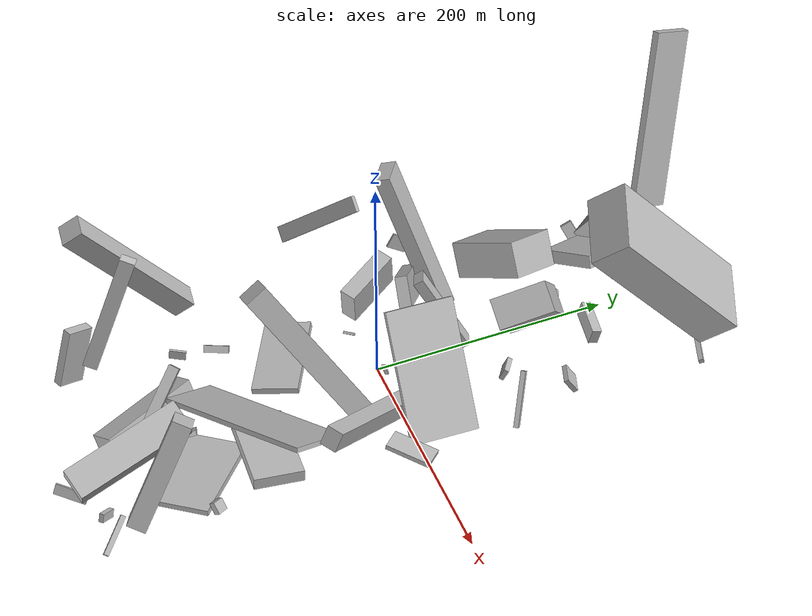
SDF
<sdf version="1.6">
 <world name="default">
  <model name="building_2">
   <static>0</static>
   <pose>93.68266452927514 87.20159840653238 23.143579104200526 -0.08364449320465732 -0.8246747885361194 2.5702398322903472</pose>
   <link name="link">
    <gravity>0</gravity>
    <pose>0 0 3.5 0 0 0</pose>
    <collision name="collision"><geometry><box><size>46 4 7</size></box></geometry></collision>
    <visual name="visual">
     <cast_shadows>0</cast_shadows>
     <geometry><box><size>46 4 7</size></box></geometry>
     <material>
      <script>
       <uri>model://HANNAS_wall/materials/scripts</uri>
       <uri>model://HANNAS_wall/materials/textures</uri>
       <name>vrc/HANNAS_wall</name>
      </script>
     </material>
    </visual>
   </link>
  </model>
  <model name="building_5">
   <static>0</static>
   <pose>46.39440185954816 -124.30378209727014 41.890652709012365 2.8159292976962544 0.37116564591501183 1.9308832724276412</pose>
   <link name="link">
    <gravity>0</gravity>
    <pose>0 0 2.0 0 0 0</pose>
    <collision name="collision"><geometry><box><size>48 150 4</size></box></geometry></collision>
    <visual name="visual">
     <cast_shadows>0</cast_shadows>
     <geometry><box><size>48 150 4</size></box></geometry>
     <material>
      <script>
       <uri>model://HANNAS_wall/materials/scripts</uri>
       <uri>model://HANNAS_wall/materials/textures</uri>
       <name>vrc/HANNAS_wall</name>
      </script>
     </material>
    </visual>
   </link>
  </model>
  <model name="building_7">
   <static>0</static>
   <pose>-20.88808407244128 -196.43720719920555 13.020495404349326 3.1354536858215885 -0.43932423467475895 0.45075643000725485</pose>
   <link name="link">
    <gravity>0</gravity>
    <pose>0 0 8.5 0 0 0</pose>
    <collision name="collision"><geometry><box><size>21 89 17</size></box></geometry></collision>
    <visual name="visual">
     <cast_shadows>0</cast_shadows>
     <geometry><box><size>21 89 17</size></box></geometry>
     <material>
      <script>
       <uri>model://HANNAS_wall/materials/scripts</uri>
       <uri>model://HANNAS_wall/materials/textures</uri>
       <name>vrc/HANNAS_wall</name>
      </script>
     </material>
    </visual>
   </link>
  </model>
  <model name="building_8">
   <static>0</static>
   <pose>-33.63528266691769 -71.66666681277462 12.464947994321324 -3.1287146317264773 -0.14972030072965373 1.068777617033211</pose>
   <link name="link">
    <gravity>0</gravity>
    <pose>0 0 3.0 0 0 0</pose>
    <collision name="collision"><geometry><box><size>39 75 6</size></box></geometry></collision>
    <visual name="visual">
     <cast_shadows>0</cast_shadows>
     <geometry><box><size>39 75 6</size></box></geometry>
     <material>
      <script>
       <uri>model://HANNAS_wall/materials/scripts</uri>
       <uri>model://HANNAS_wall/materials/textures</uri>
       <name>vrc/HANNAS_wall</name>
      </script>
     </material>
    </visual>
   </link>
  </model>
  <model name="building_13">
   <static>0</static>
   <pose>-66.70951833344935 -116.61947152901874 9.21380651445296 2.3794854619025343 -0.09533255691385169 1.0499133881418117</pose>
   <link name="link">
    <gravity>0</gravity>
    <pose>0 0 3.0 0 0 0</pose>
    <collision name="collision"><geometry><box><size>21 4 6</size></box></geometry></collision>
    <visual name="visual">
     <cast_shadows>0</cast_shadows>
     <geometry><box><size>21 4 6</size></box></geometry>
     <material>
      <script>
       <uri>model://HANNAS_wall/materials/scripts</uri>
       <uri>model://HANNAS_wall/materials/textures</uri>
       <name>vrc/HANNAS_wall</name>
      </script>
     </material>
    </visual>
   </link>
  </model>
  <model name="building_14">
   <static>0</static>
   <pose>-20.372167882930636 123.33881018285552 49.520448993707554 0.5832452196303323 -0.24869577664676826 -1.240707007917855</pose>
   <link name="link">
    <gravity>0</gravity>
    <pose>0 0 15.0 0 0 0</pose>
    <collision name="collision"><geometry><box><size>42 72 30</size></box></geometry></collision>
    <visual name="visual">
     <cast_shadows>0</cast_shadows>
     <geometry><box><size>42 72 30</size></box></geometry>
     <material>
      <script>
       <uri>model://HANNAS_wall/materials/scripts</uri>
       <uri>model://HANNAS_wall/materials/textures</uri>
       <name>vrc/HANNAS_wall</name>
      </script>
     </material>
    </visual>
   </link>
  </model>
  <model name="building_19">
   <static>0</static>
   <pose>53.37094602882471 -228.86787353481577 47.1289597258935 -0.45692346735368955 0.21145087876503119 -1.3728973677016616</pose>
   <link name="link">
    <gravity>0</gravity>
    <pose>0 0 9.5 0 0 0</pose>
    <collision name="collision"><geometry><box><size>101 26 19</size></box></geometry></collision>
    <visual name="visual">
     <cast_shadows>0</cast_shadows>
     <geometry><box><size>101 26 19</size></box></geometry>
     <material>
      <script>
       <uri>model://HANNAS_wall/materials/scripts</uri>
       <uri>model://HANNAS_wall/materials/textures</uri>
       <name>vrc/HANNAS_wall</name>
      </script>
     </material>
    </visual>
   </link>
  </model>
  <model name="building_21">
   <static>0</static>
   <pose>69.91808612485723 -120.77039924723111 19.368061854004893 0.052684245216128196 0.09947499963649521 3.05177688670682</pose>
   <link name="link">
    <gravity>0</gravity>
    <pose>0 0 5.0 0 0 0</pose>
    <collision name="collision"><geometry><box><size>74 41 10</size></box></geometry></collision>
    <visual name="visual">
     <cast_shadows>0</cast_shadows>
     <geometry><box><size>74 41 10</size></box></geometry>
     <material>
      <script>
       <uri>model://HANNAS_wall/materials/scripts</uri>
       <uri>model://HANNAS_wall/materials/textures</uri>
       <name>vrc/HANNAS_wall</name>
      </script>
     </material>
    </visual>
   </link>
  </model>
  <model name="building_26">
   <static>0</static>
   <pose>105.44713070205567 -210.74550809810407 68.68407914534313 -0.8655475477365348 -1.0071443820645478 1.924239164820859</pose>
   <link name="link">
    <gravity>0</gravity>
    <pose>0 0 8.0 0 0 0</pose>
    <collision name="collision"><geometry><box><size>96 18 16</size></box></geometry></collision>
    <visual name="visual">
     <cast_shadows>0</cast_shadows>
     <geometry><box><size>96 18 16</size></box></geometry>
     <material>
      <script>
       <uri>model://HANNAS_wall/materials/scripts</uri>
       <uri>model://HANNAS_wall/materials/textures</uri>
       <name>vrc/HANNAS_wall</name>
      </script>
     </material>
    </visual>
   </link>
  </model>
  <model name="building_27">
   <static>0</static>
   <pose>85.23500480755337 135.88356790974035 9.931502332318038 1.540888660692558 0.5594219313936739 -1.8960808070881332</pose>
   <link name="link">
    <gravity>0</gravity>
    <pose>0 0 8.5 0 0 0</pose>
    <collision name="collision"><geometry><box><size>4 16 17</size></box></geometry></collision>
    <visual name="visual">
     <cast_shadows>0</cast_shadows>
     <geometry><box><size>4 16 17</size></box></geometry>
     <material>
      <script>
       <uri>model://HANNAS_wall/materials/scripts</uri>
       <uri>model://HANNAS_wall/materials/textures</uri>
       <name>vrc/HANNAS_wall</name>
      </script>
     </material>
    </visual>
   </link>
  </model>
  <model name="building_34">
   <static>0</static>
   <pose>64.80060387779892 22.05778503133563 53.35457951836982 2.2657699885645717 -0.10130988086096844 -1.5234121312381088</pose>
   <link name="link">
    <gravity>0</gravity>
    <pose>0 0 2.0 0 0 0</pose>
    <collision name="collision"><geometry><box><size>59 109 4</size></box></geometry></collision>
    <visual name="visual">
     <cast_shadows>0</cast_shadows>
     <geometry><box><size>59 109 4</size></box></geometry>
     <material>
      <script>
       <uri>model://HANNAS_wall/materials/scripts</uri>
       <uri>model://HANNAS_wall/materials/textures</uri>
       <name>vrc/HANNAS_wall</name>
      </script>
     </material>
    </visual>
   </link>
  </model>
  <model name="building_35">
   <static>0</static>
   <pose>-79.41641491042114 -189.5268638020601 109.38273346897822 -0.2862972918087752 -0.9384598453838635 -1.459430860747403</pose>
   <link name="link">
    <gravity>0</gravity>
    <pose>0 0 9.5 0 0 0</pose>
    <collision name="collision"><geometry><box><size>150 18 19</size></box></geometry></collision>
    <visual name="visual">
     <cast_shadows>0</cast_shadows>
     <geometry><box><size>150 18 19</size></box></geometry>
     <material>
      <script>
       <uri>model://HANNAS_wall/materials/scripts</uri>
       <uri>model://HANNAS_wall/materials/textures</uri>
       <name>vrc/HANNAS_wall</name>
      </script>
     </material>
    </visual>
   </link>
  </model>
  <model name="building_38">
   <static>0</static>
   <pose>28.284378417450245 209.25781398027644 90.7845851616711 1.8688683878801233 -0.3682445103963891 1.0635972946005239</pose>
   <link name="link">
    <gravity>0</gravity>
    <pose>0 0 3.0 0 0 0</pose>
    <collision name="collision"><geometry><box><size>4 150 6</size></box></geometry></collision>
    <visual name="visual">
     <cast_shadows>0</cast_shadows>
     <geometry><box><size>4 150 6</size></box></geometry>
     <material>
      <script>
       <uri>model://HANNAS_wall/materials/scripts</uri>
       <uri>model://HANNAS_wall/materials/textures</uri>
       <name>vrc/HANNAS_wall</name>
      </script>
     </material>
    </visual>
   </link>
  </model>
  <model name="building_40">
   <static>0</static>
   <pose>102.72367714056759 -175.6460112231005 22.458659909224217 2.463916593694222 0.12068947253872109 2.0791542861998233</pose>
   <link name="link">
    <gravity>0</gravity>
    <pose>0 0 5.0 0 0 0</pose>
    <collision name="collision"><geometry><box><size>9 6 10</size></box></geometry></collision>
    <visual name="visual">
     <cast_shadows>0</cast_shadows>
     <geometry><box><size>9 6 10</size></box></geometry>
     <material>
      <script>
       <uri>model://HANNAS_wall/materials/scripts</uri>
       <uri>model://HANNAS_wall/materials/textures</uri>
       <name>vrc/HANNAS_wall</name>
      </script>
     </material>
    </visual>
   </link>
  </model>
  <model name="building_42">
   <static>0</static>
   <pose>-47.49686942183379 49.06012062323134 41.91287537348437 -0.27753428216767756 -0.8786318154192166 3.014544155904634</pose>
   <link name="link">
    <gravity>0</gravity>
    <pose>0 0 42.0 0 0 0</pose>
    <collision name="collision"><geometry><box><size>26 10 84</size></box></geometry></collision>
    <visual name="visual">
     <cast_shadows>0</cast_shadows>
     <geometry><box><size>26 10 84</size></box></geometry>
     <material>
      <script>
       <uri>model://HANNAS_wall/materials/scripts</uri>
       <uri>model://HANNAS_wall/materials/textures</uri>
       <name>vrc/HANNAS_wall</name>
      </script>
     </material>
    </visual>
   </link>
  </model>
  <model name="building_43">
   <static>0</static>
   <pose>69.83556680383288 203.09176957778536 101.23985169781314 -0.3007889731777327 -0.8596261379734641 -1.7079117507405144</pose>
   <link name="link">
    <gravity>0</gravity>
    <pose>0 0 18.0 0 0 0</pose>
    <collision name="collision"><geometry><box><size>150 60 36</size></box></geometry></collision>
    <visual name="visual">
     <cast_shadows>0</cast_shadows>
     <geometry><box><size>150 60 36</size></box></geometry>
     <material>
      <script>
       <uri>model://HANNAS_wall/materials/scripts</uri>
       <uri>model://HANNAS_wall/materials/textures</uri>
       <name>vrc/HANNAS_wall</name>
      </script>
     </material>
    </visual>
   </link>
  </model>
  <model name="building_47">
   <static>0</static>
   <pose>109.0889774042771 -257.7520618457164 23.023382390922706 -1.1105572702726605 -0.5054832712852971 2.307715222663367</pose>
   <link name="link">
    <gravity>0</gravity>
    <pose>0 0 2.0 0 0 0</pose>
    <collision name="collision"><geometry><box><size>33 7 4</size></box></geometry></collision>
    <visual name="visual">
     <cast_shadows>0</cast_shadows>
     <geometry><box><size>33 7 4</size></box></geometry>
     <material>
      <script>
       <uri>model://HANNAS_wall/materials/scripts</uri>
       <uri>model://HANNAS_wall/materials/textures</uri>
       <name>vrc/HANNAS_wall</name>
      </script>
     </material>
    </visual>
   </link>
  </model>
  <model name="building_48">
   <static>0</static>
   <pose>-18.881085516521118 169.15855055549522 9.037258919037775 -2.297347851545211 -0.24849904969051714 2.822047316341963</pose>
   <link name="link">
    <gravity>0</gravity>
    <pose>0 0 2.0 0 0 0</pose>
    <collision name="collision"><geometry><box><size>7 7 4</size></box></geometry></collision>
    <visual name="visual">
     <cast_shadows>0</cast_shadows>
     <geometry><box><size>7 7 4</size></box></geometry>
     <material>
      <script>
       <uri>model://HANNAS_wall/materials/scripts</uri>
       <uri>model://HANNAS_wall/materials/textures</uri>
       <name>vrc/HANNAS_wall</name>
      </script>
     </material>
    </visual>
   </link>
  </model>
  <model name="building_52">
   <static>0</static>
   <pose>-18.72388167998588 222.7443631146848 9.943317451530543 1.3968502560996974 0.17037749411433595 1.2557903740939866</pose>
   <link name="link">
    <gravity>0</gravity>
    <pose>0 0 2.0 0 0 0</pose>
    <collision name="collision"><geometry><box><size>4 4 4</size></box></geometry></collision>
    <visual name="visual">
     <cast_shadows>0</cast_shadows>
     <geometry><box><size>4 4 4</size></box></geometry>
     <material>
      <script>
       <uri>model://HANNAS_wall/materials/scripts</uri>
       <uri>model://HANNAS_wall/materials/textures</uri>
       <name>vrc/HANNAS_wall</name>
      </script>
     </material>
    </visual>
   </link>
  </model>
  <model name="building_55">
   <static>0</static>
   <pose>97.22893859181868 -27.22976667570987 25.451646081683496 2.4077476180737194 -1.3746284531680037 1.50992494136302</pose>
   <link name="link">
    <gravity>0</gravity>
    <pose>0 0 19.0 0 0 0</pose>
    <collision name="collision"><geometry><box><size>4 19 38</size></box></geometry></collision>
    <visual name="visual">
     <cast_shadows>0</cast_shadows>
     <geometry><box><size>4 19 38</size></box></geometry>
     <material>
      <script>
       <uri>model://HANNAS_wall/materials/scripts</uri>
       <uri>model://HANNAS_wall/materials/textures</uri>
       <name>vrc/HANNAS_wall</name>
      </script>
     </material>
    </visual>
   </link>
  </model>
  <model name="building_56">
   <static>0</static>
   <pose>-1.418409325611036 -185.5306454842825 36.705620705198925 0.7376782357435233 0.2413145972297355 0.8109978898056613</pose>
   <link name="link">
    <gravity>0</gravity>
    <pose>0 0 3.5 0 0 0</pose>
    <collision name="collision"><geometry><box><size>9 59 7</size></box></geometry></collision>
    <visual name="visual">
     <cast_shadows>0</cast_shadows>
     <geometry><box><size>9 59 7</size></box></geometry>
     <material>
      <script>
       <uri>model://HANNAS_wall/materials/scripts</uri>
       <uri>model://HANNAS_wall/materials/textures</uri>
       <name>vrc/HANNAS_wall</name>
      </script>
     </material>
    </visual>
   </link>
  </model>
  <model name="building_63">
   <static>0</static>
   <pose>82.45734863095024 -258.82880054038515 14.68056365023812 0.10681894596541489 -0.46822764057442184 -0.8764895262995303</pose>
   <link name="link">
    <gravity>0</gravity>
    <pose>0 0 3.5 0 0 0</pose>
    <collision name="collision"><geometry><box><size>15 4 7</size></box></geometry></collision>
    <visual name="visual">
     <cast_shadows>0</cast_shadows>
     <geometry><box><size>15 4 7</size></box></geometry>
     <material>
      <script>
       <uri>model://HANNAS_wall/materials/scripts</uri>
       <uri>model://HANNAS_wall/materials/textures</uri>
       <name>vrc/HANNAS_wall</name>
      </script>
     </material>
    </visual>
   </link>
  </model>
  <model name="building_69">
   <static>0</static>
   <pose>-47.369382195028074 59.040507682319664 83.64216622408469 1.921511300989764 -0.044116707575975245 -0.6120129374265885</pose>
   <link name="link">
    <gravity>0</gravity>
    <pose>0 0 6.5 0 0 0</pose>
    <collision name="collision"><geometry><box><size>23 150 13</size></box></geometry></collision>
    <visual name="visual">
     <cast_shadows>0</cast_shadows>
     <geometry><box><size>23 150 13</size></box></geometry>
     <material>
      <script>
       <uri>model://HANNAS_wall/materials/scripts</uri>
       <uri>model://HANNAS_wall/materials/textures</uri>
       <name>vrc/HANNAS_wall</name>
      </script>
     </material>
    </visual>
   </link>
  </model>
  <model name="building_73">
   <static>0</static>
   <pose>87.26114988730603 -44.87804946665441 52.92675575512403 1.8418129628914812 -0.9970106331980924 1.9516563535127707</pose>
   <link name="link">
    <gravity>0</gravity>
    <pose>0 0 7.0 0 0 0</pose>
    <collision name="collision"><geometry><box><size>16 150 14</size></box></geometry></collision>
    <visual name="visual">
     <cast_shadows>0</cast_shadows>
     <geometry><box><size>16 150 14</size></box></geometry>
     <material>
      <script>
       <uri>model://HANNAS_wall/materials/scripts</uri>
       <uri>model://HANNAS_wall/materials/textures</uri>
       <name>vrc/HANNAS_wall</name>
      </script>
     </material>
    </visual>
   </link>
  </model>
  <model name="building_76">
   <static>0</static>
   <pose>48.77249218777055 173.64844322874606 17.846482454891685 -1.3278862945001433 -1.348317301999412 1.1911420099555023</pose>
   <link name="link">
    <gravity>0</gravity>
    <pose>0 0 16.5 0 0 0</pose>
    <collision name="collision"><geometry><box><size>14 8 33</size></box></geometry></collision>
    <visual name="visual">
     <cast_shadows>0</cast_shadows>
     <geometry><box><size>14 8 33</size></box></geometry>
     <material>
      <script>
       <uri>model://HANNAS_wall/materials/scripts</uri>
       <uri>model://HANNAS_wall/materials/textures</uri>
       <name>vrc/HANNAS_wall</name>
      </script>
     </material>
    </visual>
   </link>
  </model>
  <model name="building_78">
   <static>0</static>
   <pose>-62.27812065685185 15.898953788591594 21.125576892114417 0.15798727948010505 0.08745172113682435 0.54378119628999</pose>
   <link name="link">
    <gravity>0</gravity>
    <pose>0 0 16.0 0 0 0</pose>
    <collision name="collision"><geometry><box><size>14 51 32</size></box></geometry></collision>
    <visual name="visual">
     <cast_shadows>0</cast_shadows>
     <geometry><box><size>14 51 32</size></box></geometry>
     <material>
      <script>
       <uri>model://HANNAS_wall/materials/scripts</uri>
       <uri>model://HANNAS_wall/materials/textures</uri>
       <name>vrc/HANNAS_wall</name>
      </script>
     </material>
    </visual>
   </link>
  </model>
  <model name="building_89">
   <static>0</static>
   <pose>17.464132561246945 -70.21493888377765 70.9371083839635 1.2198749436579446 -0.4631684864807404 1.7948726797872083</pose>
   <link name="link">
    <gravity>0</gravity>
    <pose>0 0 8.0 0 0 0</pose>
    <collision name="collision"><geometry><box><size>20 150 16</size></box></geometry></collision>
    <visual name="visual">
     <cast_shadows>0</cast_shadows>
     <geometry><box><size>20 150 16</size></box></geometry>
     <material>
      <script>
       <uri>model://HANNAS_wall/materials/scripts</uri>
       <uri>model://HANNAS_wall/materials/textures</uri>
       <name>vrc/HANNAS_wall</name>
      </script>
     </material>
    </visual>
   </link>
  </model>
  <model name="building_91">
   <static>0</static>
   <pose>64.11430291228396 84.45678796744356 31.95992527034906 1.9971466924160708 0.18985424504990067 2.5658264880625663</pose>
   <link name="link">
    <gravity>0</gravity>
    <pose>0 0 2.0 0 0 0</pose>
    <collision name="collision"><geometry><box><size>18 10 4</size></box></geometry></collision>
    <visual name="visual">
     <cast_shadows>0</cast_shadows>
     <geometry><box><size>18 10 4</size></box></geometry>
     <material>
      <script>
       <uri>model://HANNAS_wall/materials/scripts</uri>
       <uri>model://HANNAS_wall/materials/textures</uri>
       <name>vrc/HANNAS_wall</name>
      </script>
     </material>
    </visual>
   </link>
  </model>
  <model name="building_92">
   <static>0</static>
   <pose>-15.571424036045679 245.9576152904311 85.3823114597043 -0.34604123860514896 -0.2917255032176731 0.268564033443867</pose>
   <link name="link">
    <gravity>0</gravity>
    <pose>0 0 75.0 0 0 0</pose>
    <collision name="collision"><geometry><box><size>7 32 150</size></box></geometry></collision>
    <visual name="visual">
     <cast_shadows>0</cast_shadows>
     <geometry><box><size>7 32 150</size></box></geometry>
     <material>
      <script>
       <uri>model://HANNAS_wall/materials/scripts</uri>
       <uri>model://HANNAS_wall/materials/textures</uri>
       <name>vrc/HANNAS_wall</name>
      </script>
     </material>
    </visual>
   </link>
  </model>
  <model name="building_93">
   <static>0</static>
   <pose>-18.452283171388626 -234.12239660744447 80.36798259798505 0.12323078794641767 0.3112676675284952 1.0080849128843825</pose>
   <link name="link">
    <gravity>0</gravity>
    <pose>0 0 75.0 0 0 0</pose>
    <collision name="collision"><geometry><box><size>12 6 150</size></box></geometry></collision>
    <visual name="visual">
     <cast_shadows>0</cast_shadows>
     <geometry><box><size>12 6 150</size></box></geometry>
     <material>
      <script>
       <uri>model://HANNAS_wall/materials/scripts</uri>
       <uri>model://HANNAS_wall/materials/textures</uri>
       <name>vrc/HANNAS_wall</name>
      </script>
     </material>
    </visual>
   </link>
  </model>
  <model name="building_94">
   <static>0</static>
   <pose>38.39451391110131 265.0430305308556 18.9616694924651 -2.765755448473619 -0.06072253412981126 -0.33825505413376866</pose>
   <link name="link">
    <gravity>0</gravity>
    <pose>0 0 2.0 0 0 0</pose>
    <collision name="collision"><geometry><box><size>150 4 4</size></box></geometry></collision>
    <visual name="visual">
     <cast_shadows>0</cast_shadows>
     <geometry><box><size>150 4 4</size></box></geometry>
     <material>
      <script>
       <uri>model://HANNAS_wall/materials/scripts</uri>
       <uri>model://HANNAS_wall/materials/textures</uri>
       <name>vrc/HANNAS_wall</name>
      </script>
     </material>
    </visual>
   </link>
  </model>
  <model name="building_98">
   <static>0</static>
   <pose>38.348979501263564 121.18205214816567 45.521379001826844 0.5072394948919408 -0.823418681242561 -0.625834404857793</pose>
   <link name="link">
    <gravity>0</gravity>
    <pose>0 0 13.0 0 0 0</pose>
    <collision name="collision"><geometry><box><size>71 47 26</size></box></geometry></collision>
    <visual name="visual">
     <cast_shadows>0</cast_shadows>
     <geometry><box><size>71 47 26</size></box></geometry>
     <material>
      <script>
       <uri>model://HANNAS_wall/materials/scripts</uri>
       <uri>model://HANNAS_wall/materials/textures</uri>
       <name>vrc/HANNAS_wall</name>
      </script>
     </material>
    </visual>
   </link>
  </model>
  <model name="building_103">
   <static>0</static>
   <pose>-39.258256822136794 233.89428218737226 34.441343081158735 0.3464990858428583 -1.0009221931125152 0.2608057296036713</pose>
   <link name="link">
    <gravity>0</gravity>
    <pose>0 0 13.5 0 0 0</pose>
    <collision name="collision"><geometry><box><size>56 22 27</size></box></geometry></collision>
    <visual name="visual">
     <cast_shadows>0</cast_shadows>
     <geometry><box><size>56 22 27</size></box></geometry>
     <material>
      <script>
       <uri>model://HANNAS_wall/materials/scripts</uri>
       <uri>model://HANNAS_wall/materials/textures</uri>
       <name>vrc/HANNAS_wall</name>
      </script>
     </material>
    </visual>
   </link>
  </model>
  <model name="building_109">
   <static>0</static>
   <pose>-76.45699945972184 -225.34875543602007 35.70627150832765 -0.09086199228884854 -1.2457257026107904 2.030246489201075</pose>
   <link name="link">
    <gravity>0</gravity>
    <pose>0 0 11.5 0 0 0</pose>
    <collision name="collision"><geometry><box><size>51 8 23</size></box></geometry></collision>
    <visual name="visual">
     <cast_shadows>0</cast_shadows>
     <geometry><box><size>51 8 23</size></box></geometry>
     <material>
      <script>
       <uri>model://HANNAS_wall/materials/scripts</uri>
       <uri>model://HANNAS_wall/materials/textures</uri>
       <name>vrc/HANNAS_wall</name>
      </script>
     </material>
    </visual>
   </link>
  </model>
  <model name="building_110">
   <static>0</static>
   <pose>-25.071796527299608 196.70227468906103 33.38572728429691 0.4116183041984479 -0.29375919894512476 -1.1513274278872685</pose>
   <link name="link">
    <gravity>0</gravity>
    <pose>0 0 5.5 0 0 0</pose>
    <collision name="collision"><geometry><box><size>44 48 11</size></box></geometry></collision>
    <visual name="visual">
     <cast_shadows>0</cast_shadows>
     <geometry><box><size>44 48 11</size></box></geometry>
     <material>
      <script>
       <uri>model://HANNAS_wall/materials/scripts</uri>
       <uri>model://HANNAS_wall/materials/textures</uri>
       <name>vrc/HANNAS_wall</name>
      </script>
     </material>
    </visual>
   </link>
  </model>
  <model name="building_116">
   <static>0</static>
   <pose>-59.62242863597058 -58.12278164888767 122.24287794841655 0.7874815223205565 0.4773090854099251 2.047295674855386</pose>
   <link name="link">
    <gravity>0</gravity>
    <pose>0 0 40.0 0 0 0</pose>
    <collision name="collision"><geometry><box><size>4 13 80</size></box></geometry></collision>
    <visual name="visual">
     <cast_shadows>0</cast_shadows>
     <geometry><box><size>4 13 80</size></box></geometry>
     <material>
      <script>
       <uri>model://HANNAS_wall/materials/scripts</uri>
       <uri>model://HANNAS_wall/materials/textures</uri>
       <name>vrc/HANNAS_wall</name>
      </script>
     </material>
    </visual>
   </link>
  </model>
  <model name="building_120">
   <static>0</static>
   <pose>34.184601785955884 -186.85210643368114 30.775008648996717 -1.3885843700970262 -0.6699224232111697 -0.3247991862487031</pose>
   <link name="link">
    <gravity>0</gravity>
    <pose>0 0 9.5 0 0 0</pose>
    <collision name="collision"><geometry><box><size>16 4 19</size></box></geometry></collision>
    <visual name="visual">
     <cast_shadows>0</cast_shadows>
     <geometry><box><size>16 4 19</size></box></geometry>
     <material>
      <script>
       <uri>model://HANNAS_wall/materials/scripts</uri>
       <uri>model://HANNAS_wall/materials/textures</uri>
       <name>vrc/HANNAS_wall</name>
      </script>
     </material>
    </visual>
   </link>
  </model>
  <model name="building_124">
   <static>0</static>
   <pose>-7.696739608181645 63.883837981860424 40.802257323248426 2.106478960613312 -0.17677261700299787 -0.3857343641816204</pose>
   <link name="link">
    <gravity>0</gravity>
    <pose>0 0 4.5 0 0 0</pose>
    <collision name="collision"><geometry><box><size>15 75 9</size></box></geometry></collision>
    <visual name="visual">
     <cast_shadows>0</cast_shadows>
     <geometry><box><size>15 75 9</size></box></geometry>
     <material>
      <script>
       <uri>model://HANNAS_wall/materials/scripts</uri>
       <uri>model://HANNAS_wall/materials/textures</uri>
       <name>vrc/HANNAS_wall</name>
      </script>
     </material>
    </visual>
   </link>
  </model>
  <model name="building_125">
   <static>0</static>
   <pose>52.967352102826 -265.27041267824904 9.282583094959218 1.3323041892259522 -0.43343082100719665 -0.5279912614133201</pose>
   <link name="link">
    <gravity>0</gravity>
    <pose>0 0 13.5 0 0 0</pose>
    <collision name="collision"><geometry><box><size>2 9 27</size></box></geometry></collision>
    <visual name="visual">
     <cast_shadows>0</cast_shadows>
     <geometry><box><size>2 9 27</size></box></geometry>
     <material>
      <script>
       <uri>model://HANNAS_wall/materials/scripts</uri>
       <uri>model://HANNAS_wall/materials/textures</uri>
       <name>vrc/HANNAS_wall</name>
      </script>
     </material>
    </visual>
   </link>
  </model>
  <model name="building_126">
   <static>0</static>
   <pose>-86.7360005026266 50.42036696207812 41.75707582031856 0.5603513575096619 0.15179919681677864 3.078332784881964</pose>
   <link name="link">
    <gravity>0</gravity>
    <pose>0 0 6.5 0 0 0</pose>
    <collision name="collision"><geometry><box><size>2 17 13</size></box></geometry></collision>
    <visual name="visual">
     <cast_shadows>0</cast_shadows>
     <geometry><box><size>2 17 13</size></box></geometry>
     <material>
      <script>
       <uri>model://HANNAS_wall/materials/scripts</uri>
       <uri>model://HANNAS_wall/materials/textures</uri>
       <name>vrc/HANNAS_wall</name>
      </script>
     </material>
    </visual>
   </link>
  </model>
  <model name="building_131">
   <static>0</static>
   <pose>-68.715676550474 203.4992243522952 23.94401045705614 2.1916525754984146 0.4616302691658279 -1.6562967430771238</pose>
   <link name="link">
    <gravity>0</gravity>
    <pose>0 0 3.0 0 0 0</pose>
    <collision name="collision"><geometry><box><size>10 13 6</size></box></geometry></collision>
    <visual name="visual">
     <cast_shadows>0</cast_shadows>
     <geometry><box><size>10 13 6</size></box></geometry>
     <material>
      <script>
       <uri>model://HANNAS_wall/materials/scripts</uri>
       <uri>model://HANNAS_wall/materials/textures</uri>
       <name>vrc/HANNAS_wall</name>
      </script>
     </material>
    </visual>
   </link>
  </model>
  <model name="building_133">
   <static>0</static>
   <pose>74.81709104411652 -156.50036421743172 9.315747381529613 2.5381528903578396 1.4414970877226394 0.24470213499469032</pose>
   <link name="link">
    <gravity>0</gravity>
    <pose>0 0 29.5 0 0 0</pose>
    <collision name="collision"><geometry><box><size>5 80 59</size></box></geometry></collision>
    <visual name="visual">
     <cast_shadows>0</cast_shadows>
     <geometry><box><size>5 80 59</size></box></geometry>
     <material>
      <script>
       <uri>model://HANNAS_wall/materials/scripts</uri>
       <uri>model://HANNAS_wall/materials/textures</uri>
       <name>vrc/HANNAS_wall</name>
      </script>
     </material>
    </visual>
   </link>
  </model>
  <model name="building_134">
   <static>0</static>
   <pose>13.679444162209885 1.7999402273212028 13.812157666384344 -2.012871199935461 -1.2967796333637889 -1.7522356259432876</pose>
   <link name="link">
    <gravity>0</gravity>
    <pose>0 0 1.0 0 0 0</pose>
    <collision name="collision"><geometry><box><size>11 3 2</size></box></geometry></collision>
    <visual name="visual">
     <cast_shadows>0</cast_shadows>
     <geometry><box><size>11 3 2</size></box></geometry>
     <material>
      <script>
       <uri>model://HANNAS_wall/materials/scripts</uri>
       <uri>model://HANNAS_wall/materials/textures</uri>
       <name>vrc/HANNAS_wall</name>
      </script>
     </material>
    </visual>
   </link>
  </model>
  <model name="building_135">
   <static>0</static>
   <pose>-63.255613146286265 -144.20204195220387 11.354070618759087 0.006033790612939519 1.453063721242325 -2.001557660266608</pose>
   <link name="link">
    <gravity>0</gravity>
    <pose>0 0 7.0 0 0 0</pose>
    <collision name="collision"><geometry><box><size>9 2 14</size></box></geometry></collision>
    <visual name="visual">
     <cast_shadows>0</cast_shadows>
     <geometry><box><size>9 2 14</size></box></geometry>
     <material>
      <script>
       <uri>model://HANNAS_wall/materials/scripts</uri>
       <uri>model://HANNAS_wall/materials/textures</uri>
       <name>vrc/HANNAS_wall</name>
      </script>
     </material>
    </visual>
   </link>
  </model>
  <model name="building_138">
   <static>0</static>
   <pose>-1.286323804240281 132.85296405142347 27.403985616961716 1.3069077244658434 0.06514047383615833 1.7526699202775107</pose>
   <link name="link">
    <gravity>0</gravity>
    <pose>0 0 2.5 0 0 0</pose>
    <collision name="collision"><geometry><box><size>19 7 5</size></box></geometry></collision>
    <visual name="visual">
     <cast_shadows>0</cast_shadows>
     <geometry><box><size>19 7 5</size></box></geometry>
     <material>
      <script>
       <uri>model://HANNAS_wall/materials/scripts</uri>
       <uri>model://HANNAS_wall/materials/textures</uri>
       <name>vrc/HANNAS_wall</name>
      </script>
     </material>
    </visual>
   </link>
  </model>
  <model name="building_139">
   <static>0</static>
   <pose>-31.362846210375018 -7.731261865818688 14.288816785250857 -1.7074463991878837 -0.6580223641004421 2.4902080309648214</pose>
   <link name="link">
    <gravity>0</gravity>
    <pose>0 0 5.0 0 0 0</pose>
    <collision name="collision"><geometry><box><size>2 2 10</size></box></geometry></collision>
    <visual name="visual">
     <cast_shadows>0</cast_shadows>
     <geometry><box><size>2 2 10</size></box></geometry>
     <material>
      <script>
       <uri>model://HANNAS_wall/materials/scripts</uri>
       <uri>model://HANNAS_wall/materials/textures</uri>
       <name>vrc/HANNAS_wall</name>
      </script>
     </material>
    </visual>
   </link>
  </model>
 </world>
</sdf>
